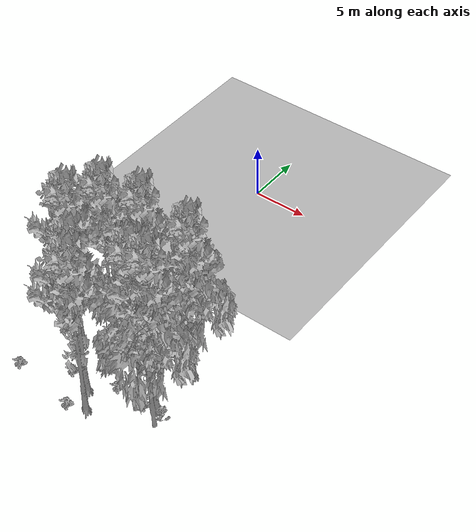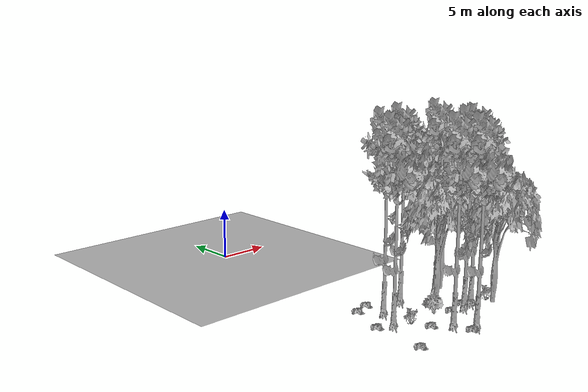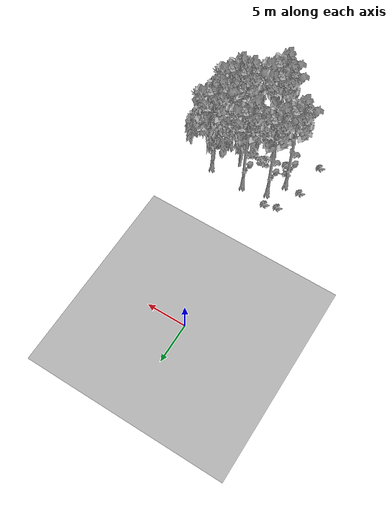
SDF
<sdf version="1.7">
 <world name="default">
  <model name="ground_plane">
   <static>1</static>
   <link name="link">
    <collision name="collision">
     <pose>-50 0 0 0 -0 0</pose>
     <geometry><plane><normal>0 0 1</normal><size>80 80</size></plane></geometry>
     <surface><contact><ode><min_depth>0.01</min_depth><max_vel>0</max_vel></ode></contact></surface>
    </collision>
    <visual name="grass">
     <cast_shadows>0</cast_shadows>
     <geometry>
      <mesh>
       <scale>0.46714285714285714 0.46714285714285714 0.1</scale>
       <uri>file://grass_plane/meshes/grass_plane.dae</uri>
      </mesh>
     </geometry>
    </visual>
   </link>
  </model>
  <model name="Tree 34">
   <static>1</static>
   <pose>4.085883050414772 -19.612352335270362 0 1.57079 -0 0</pose>
   <link name="link">
    <collision name="collision">
     <geometry><mesh><scale>3.5 5 3.5</scale><uri>model://tree_9/meshes/tree_9.obj</uri></mesh></geometry>
    </collision>
    <visual name="visual">
     <geometry><mesh><scale>3.5 5 3.5</scale><uri>model://tree_9/meshes/tree_9.obj</uri></mesh></geometry>
    </visual>
   </link>
  </model>
  <model name="Tree 96">
   <static>1</static>
   <pose>8.71775396138333 -19.95933176411726 0 1.57079 -0 0</pose>
   <link name="link">
    <collision name="collision">
     <geometry><mesh><scale>3.5 5 3.5</scale><uri>model://tree_9/meshes/tree_9.obj</uri></mesh></geometry>
    </collision>
    <visual name="visual">
     <geometry><mesh><scale>3.5 5 3.5</scale><uri>model://tree_9/meshes/tree_9.obj</uri></mesh></geometry>
    </visual>
   </link>
  </model>
  <model name="Tree 114">
   <static>1</static>
   <pose>-0.41298708499618897 -22.581806808840412 0 1.57079 -0 0</pose>
   <link name="link">
    <collision name="collision">
     <geometry><mesh><scale>3.5 5 3.5</scale><uri>model://tree_9/meshes/tree_9.obj</uri></mesh></geometry>
    </collision>
    <visual name="visual">
     <geometry><mesh><scale>3.5 5 3.5</scale><uri>model://tree_9/meshes/tree_9.obj</uri></mesh></geometry>
    </visual>
   </link>
  </model>
  <model name="Tree 187">
   <static>1</static>
   <pose>8.803217956184554 -20.40377678754193 0 1.57079 -0 0</pose>
   <link name="link">
    <collision name="collision">
     <geometry><mesh><scale>3.5 5 3.5</scale><uri>model://tree_2/meshes/tree_2.obj</uri></mesh></geometry>
    </collision>
    <visual name="visual">
     <geometry><mesh><scale>3.5 5 3.5</scale><uri>model://tree_2/meshes/tree_2.obj</uri></mesh></geometry>
    </visual>
   </link>
  </model>
  <model name="Tree 265">
   <static>1</static>
   <pose>8.401751217469972 -24.04463510982896 0 1.57079 -0 0</pose>
   <link name="link">
    <collision name="collision">
     <geometry><mesh><scale>3.5 5 3.5</scale><uri>model://tree_9/meshes/tree_9.obj</uri></mesh></geometry>
    </collision>
    <visual name="visual">
     <geometry><mesh><scale>3.5 5 3.5</scale><uri>model://tree_9/meshes/tree_9.obj</uri></mesh></geometry>
    </visual>
   </link>
  </model>
  <model name="Tree 368">
   <static>1</static>
   <pose>3.17889585165652 -25.96471650380458 0 1.57079 -0 0</pose>
   <link name="link">
    <collision name="collision">
     <geometry><mesh><scale>3.5 5 3.5</scale><uri>model://tree_9/meshes/tree_9.obj</uri></mesh></geometry>
    </collision>
    <visual name="visual">
     <geometry><mesh><scale>3.5 5 3.5</scale><uri>model://tree_9/meshes/tree_9.obj</uri></mesh></geometry>
    </visual>
   </link>
  </model>
  <model name="Tree 370">
   <static>1</static>
   <pose>9.422220214371372 -25.57721441138333 0 1.57079 -0 0</pose>
   <link name="link">
    <collision name="collision">
     <geometry><mesh><scale>3.5 5 3.5</scale><uri>model://tree_2/meshes/tree_2.obj</uri></mesh></geometry>
    </collision>
    <visual name="visual">
     <geometry><mesh><scale>3.5 5 3.5</scale><uri>model://tree_2/meshes/tree_2.obj</uri></mesh></geometry>
    </visual>
   </link>
  </model>
  <model name="Tree 395">
   <static>1</static>
   <pose>0.9598404829494385 -20.35277737022323 0 1.57079 -0 0</pose>
   <link name="link">
    <collision name="collision">
     <geometry><mesh><scale>3.5 5 3.5</scale><uri>model://tree_9/meshes/tree_9.obj</uri></mesh></geometry>
    </collision>
    <visual name="visual">
     <geometry><mesh><scale>3.5 5 3.5</scale><uri>model://tree_9/meshes/tree_9.obj</uri></mesh></geometry>
    </visual>
   </link>
  </model>
  <model name="Tree 403">
   <static>1</static>
   <pose>7.082065678776047 -24.272637343825416 0 1.57079 -0 0</pose>
   <link name="link">
    <collision name="collision">
     <geometry><mesh><scale>3.5 5 3.5</scale><uri>model://tree_9/meshes/tree_9.obj</uri></mesh></geometry>
    </collision>
    <visual name="visual">
     <geometry><mesh><scale>3.5 5 3.5</scale><uri>model://tree_9/meshes/tree_9.obj</uri></mesh></geometry>
    </visual>
   </link>
  </model>
  <model name="Tree 444">
   <static>1</static>
   <pose>4.337734256460614 -27.408694043900006 0 1.57079 -0 0</pose>
   <link name="link">
    <collision name="collision">
     <geometry><mesh><scale>3.5 5 3.5</scale><uri>model://tree_9/meshes/tree_9.obj</uri></mesh></geometry>
    </collision>
    <visual name="visual">
     <geometry><mesh><scale>3.5 5 3.5</scale><uri>model://tree_9/meshes/tree_9.obj</uri></mesh></geometry>
    </visual>
   </link>
  </model>
  <model name="Tree 483">
   <static>1</static>
   <pose>5.869718666074853 -22.149494484444972 0 1.57079 -0 0</pose>
   <link name="link">
    <collision name="collision">
     <geometry><mesh><scale>3.5 5 3.5</scale><uri>model://tree_2/meshes/tree_2.obj</uri></mesh></geometry>
    </collision>
    <visual name="visual">
     <geometry><mesh><scale>3.5 5 3.5</scale><uri>model://tree_2/meshes/tree_2.obj</uri></mesh></geometry>
    </visual>
   </link>
  </model>
  <model name="Bush 0">
   <static>1</static>
   <pose>0.3352505393363501 -23.818290861255065 0 1.57079 -0 0</pose>
   <link name="link">
    <collision name="collision">
     <geometry><mesh><scale>2 2 2</scale><uri>model://bush_4/meshes/bush_4.obj</uri></mesh></geometry>
     <surface><contact><collide_without_contact>false</collide_without_contact></contact></surface>
    </collision>
    <visual name="visual">
     <geometry><mesh><scale>2 2 2</scale><uri>model://bush_4/meshes/bush_4.obj</uri></mesh></geometry>
    </visual>
   </link>
  </model>
  <model name="Bush 34">
   <static>1</static>
   <pose>9.485222613394306 -24.942163062665514 0 1.57079 -0 0</pose>
   <link name="link">
    <collision name="collision">
     <geometry><mesh><scale>2 2 2</scale><uri>model://bush_4/meshes/bush_4.obj</uri></mesh></geometry>
     <surface><contact><collide_without_contact>false</collide_without_contact></contact></surface>
    </collision>
    <visual name="visual">
     <geometry><mesh><scale>2 2 2</scale><uri>model://bush_4/meshes/bush_4.obj</uri></mesh></geometry>
    </visual>
   </link>
  </model>
  <model name="Bush 117">
   <static>1</static>
   <pose>7.039016252411379 -24.126989000091577 0 1.57079 -0 0</pose>
   <link name="link">
    <collision name="collision">
     <geometry><mesh><scale>2 2 2</scale><uri>model://bush_2/meshes/bush_2.obj</uri></mesh></geometry>
     <surface><contact><collide_without_contact>false</collide_without_contact></contact></surface>
    </collision>
    <visual name="visual">
     <geometry><mesh><scale>2 2 2</scale><uri>model://bush_2/meshes/bush_2.obj</uri></mesh></geometry>
    </visual>
   </link>
  </model>
  <model name="Bush 135">
   <static>1</static>
   <pose>7.60060624930518 -24.589938814246608 0 1.57079 -0 0</pose>
   <link name="link">
    <collision name="collision">
     <geometry><mesh><scale>2 2 2</scale><uri>model://bush_2/meshes/bush_2.obj</uri></mesh></geometry>
     <surface><contact><collide_without_contact>false</collide_without_contact></contact></surface>
    </collision>
    <visual name="visual">
     <geometry><mesh><scale>2 2 2</scale><uri>model://bush_2/meshes/bush_2.obj</uri></mesh></geometry>
    </visual>
   </link>
  </model>
  <model name="Bush 219">
   <static>1</static>
   <pose>1.0113939272799541 -25.320230239371668 0 1.57079 -0 0</pose>
   <link name="link">
    <collision name="collision">
     <geometry><mesh><scale>2 2 2</scale><uri>model://bush_2/meshes/bush_2.obj</uri></mesh></geometry>
     <surface><contact><collide_without_contact>false</collide_without_contact></contact></surface>
    </collision>
    <visual name="visual">
     <geometry><mesh><scale>2 2 2</scale><uri>model://bush_2/meshes/bush_2.obj</uri></mesh></geometry>
    </visual>
   </link>
  </model>
  <model name="Bush 234">
   <static>1</static>
   <pose>-1.1235930368397504 -19.236058443162367 0 1.57079 -0 0</pose>
   <link name="link">
    <collision name="collision">
     <geometry><mesh><scale>2 2 2</scale><uri>model://bush_2/meshes/bush_2.obj</uri></mesh></geometry>
     <surface><contact><collide_without_contact>false</collide_without_contact></contact></surface>
    </collision>
    <visual name="visual">
     <geometry><mesh><scale>2 2 2</scale><uri>model://bush_2/meshes/bush_2.obj</uri></mesh></geometry>
    </visual>
   </link>
  </model>
  <model name="Bush 241">
   <static>1</static>
   <pose>3.418691002041996 -23.831097382561197 0 1.57079 -0 0</pose>
   <link name="link">
    <collision name="collision">
     <geometry><mesh><scale>2 2 2</scale><uri>model://bush_1/meshes/bush_1.obj</uri></mesh></geometry>
     <surface><contact><collide_without_contact>false</collide_without_contact></contact></surface>
    </collision>
    <visual name="visual">
     <geometry><mesh><scale>2 2 2</scale><uri>model://bush_1/meshes/bush_1.obj</uri></mesh></geometry>
    </visual>
   </link>
  </model>
  <model name="Bush 286">
   <static>1</static>
   <pose>0.4292079161175266 -18.819672207803038 0 1.57079 -0 0</pose>
   <link name="link">
    <collision name="collision">
     <geometry><mesh><scale>2 2 2</scale><uri>model://bush_2/meshes/bush_2.obj</uri></mesh></geometry>
     <surface><contact><collide_without_contact>false</collide_without_contact></contact></surface>
    </collision>
    <visual name="visual">
     <geometry><mesh><scale>2 2 2</scale><uri>model://bush_2/meshes/bush_2.obj</uri></mesh></geometry>
    </visual>
   </link>
  </model>
  <model name="Bush 340">
   <static>1</static>
   <pose>-2.4639158215389045 -22.54636565452258 0 1.57079 -0 0</pose>
   <link name="link">
    <collision name="collision">
     <geometry><mesh><scale>2 2 2</scale><uri>model://bush_2/meshes/bush_2.obj</uri></mesh></geometry>
     <surface><contact><collide_without_contact>false</collide_without_contact></contact></surface>
    </collision>
    <visual name="visual">
     <geometry><mesh><scale>2 2 2</scale><uri>model://bush_2/meshes/bush_2.obj</uri></mesh></geometry>
    </visual>
   </link>
  </model>
  <model name="Bush 405">
   <static>1</static>
   <pose>2.8551614167497164 -27.98937800057434 0 1.57079 -0 0</pose>
   <link name="link">
    <collision name="collision">
     <geometry><mesh><scale>2 2 2</scale><uri>model://bush_2/meshes/bush_2.obj</uri></mesh></geometry>
     <surface><contact><collide_without_contact>false</collide_without_contact></contact></surface>
    </collision>
    <visual name="visual">
     <geometry><mesh><scale>2 2 2</scale><uri>model://bush_2/meshes/bush_2.obj</uri></mesh></geometry>
    </visual>
   </link>
  </model>
  <model name="Bush 503">
   <static>1</static>
   <pose>-2.8288030274413103 -27.210879862840002 0 1.57079 -0 0</pose>
   <link name="link">
    <collision name="collision">
     <geometry><mesh><scale>2 2 2</scale><uri>model://bush_2/meshes/bush_2.obj</uri></mesh></geometry>
     <surface><contact><collide_without_contact>false</collide_without_contact></contact></surface>
    </collision>
    <visual name="visual">
     <geometry><mesh><scale>2 2 2</scale><uri>model://bush_2/meshes/bush_2.obj</uri></mesh></geometry>
    </visual>
   </link>
  </model>
  <model name="Bush 616">
   <static>1</static>
   <pose>4.894145882972438 -24.480821588497925 0 1.57079 -0 0</pose>
   <link name="link">
    <collision name="collision">
     <geometry><mesh><scale>2 2 2</scale><uri>model://bush_2/meshes/bush_2.obj</uri></mesh></geometry>
     <surface><contact><collide_without_contact>false</collide_without_contact></contact></surface>
    </collision>
    <visual name="visual">
     <geometry><mesh><scale>2 2 2</scale><uri>model://bush_2/meshes/bush_2.obj</uri></mesh></geometry>
    </visual>
   </link>
  </model>
 </world>
</sdf>
